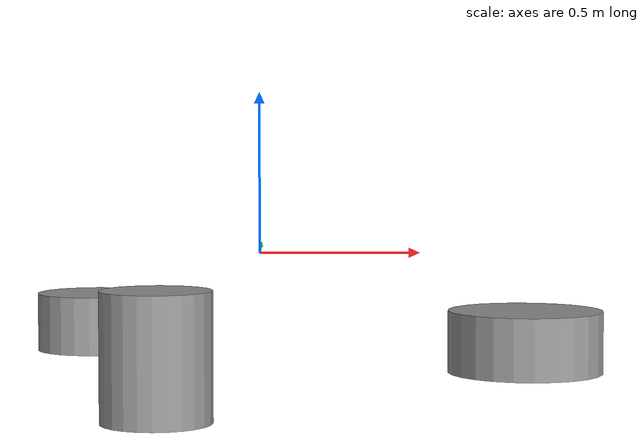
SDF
<?xml version='1.0'?>
<sdf version='1.6'>
  <model name='stupid_rocks'>
    <link name='link_2'>
      <inertial>
        <mass>1</mass>
        <inertia>
          <ixx>0.145833</ixx>
          <ixy>0</ixy>
          <ixz>0</ixz>
          <iyy>0.145833</iyy>
          <iyz>0</iyz>
          <izz>0.125</izz>
        </inertia>
        <pose frame=''>0 0 0 0 -0 0</pose>
      </inertial>
      <pose frame=''>-0.259143 -0.980913 -0.2 0 -0 0</pose>
      <gravity>1</gravity>
      <self_collide>0</self_collide>
      <kinematic>0</kinematic>
      <enable_wind>0</enable_wind>
      <visual name='visual'>
        <pose frame=''>0 0 0 0 -0 0</pose>
        <geometry>
          <cylinder>
            <radius>0.15</radius>
            <length>0.35</length>
          </cylinder>
        </geometry>
        <material>
          <lighting>1</lighting>
          <script>
            <uri>file://media/materials/scripts/gazebo.material</uri>
            <name>Gazebo/Grey</name>
          </script>
          <shader type='vertex'>
            <normal_map>__default__</normal_map>
          </shader>
          <ambient>0.3 0.3 0.3 1</ambient>
          <diffuse>0.7 0.7 0.7 1</diffuse>
          <specular>0.01 0.01 0.01 1</specular>
          <emissive>0 0 0 1</emissive>
        </material>
        <transparency>0</transparency>
        <cast_shadows>1</cast_shadows>
      </visual>
      <collision name='collision'>
        <laser_retro>0</laser_retro>
        <max_contacts>10</max_contacts>
        <pose frame=''>0 0 0 0 -0 0</pose>
        <geometry>
          <cylinder>
            <radius>0.15</radius>
            <length>0.35</length>
          </cylinder>
        </geometry>
        <surface>
          <friction>
            <ode>
              <mu>1</mu>
              <mu2>1</mu2>
              <fdir1>0 0 0</fdir1>
              <slip1>0</slip1>
              <slip2>0</slip2>
            </ode>
            <torsional>
              <coefficient>1</coefficient>
              <patch_radius>0</patch_radius>
              <surface_radius>0</surface_radius>
              <use_patch_radius>1</use_patch_radius>
              <ode>
                <slip>0</slip>
              </ode>
            </torsional>
          </friction>
          <bounce>
            <restitution_coefficient>0</restitution_coefficient>
            <threshold>1e+06</threshold>
          </bounce>
          <contact>
            <collide_without_contact>0</collide_without_contact>
            <collide_without_contact_bitmask>1</collide_without_contact_bitmask>
            <collide_bitmask>1</collide_bitmask>
            <ode>
              <soft_cfm>0</soft_cfm>
              <soft_erp>0.2</soft_erp>
              <kp>1e+13</kp>
              <kd>1</kd>
              <max_vel>0.01</max_vel>
              <min_depth>0</min_depth>
            </ode>
            <bullet>
              <split_impulse>1</split_impulse>
              <split_impulse_penetration_threshold>-0.01</split_impulse_penetration_threshold>
              <soft_cfm>0</soft_cfm>
              <soft_erp>0.2</soft_erp>
              <kp>1e+13</kp>
              <kd>1</kd>
            </bullet>
          </contact>
        </surface>
      </collision>
    </link>
    <link name='link_3'>
      <inertial>
        <mass>1</mass>
        <inertia>
          <ixx>0.145833</ixx>
          <ixy>0</ixy>
          <ixz>0</ixz>
          <iyy>0.145833</iyy>
          <iyz>0</iyz>
          <izz>0.125</izz>
        </inertia>
        <pose frame=''>0 0 0 0 -0 0</pose>
      </inertial>
      <pose frame=''>0.852767 0.177527 0.1 0 -0 0</pose>
      <gravity>1</gravity>
      <self_collide>0</self_collide>
      <kinematic>0</kinematic>
      <enable_wind>0</enable_wind>
      <visual name='visual'>
        <pose frame=''>0 0 -0.4 0 -0 0</pose>
        <geometry>
          <cylinder>
            <radius>0.25</radius>
            <length>0.2</length>
          </cylinder>
        </geometry>
        <material>
          <lighting>1</lighting>
          <script>
            <uri>file://media/materials/scripts/gazebo.material</uri>
            <name>Gazebo/Grey</name>
          </script>
          <shader type='vertex'>
            <normal_map>__default__</normal_map>
          </shader>
          <ambient>0.3 0.3 0.3 1</ambient>
          <diffuse>0.7 0.7 0.7 1</diffuse>
          <specular>0.01 0.01 0.01 1</specular>
          <emissive>0 0 0 1</emissive>
        </material>
        <transparency>0</transparency>
        <cast_shadows>1</cast_shadows>
      </visual>
      <collision name='collision'>
        <laser_retro>0</laser_retro>
        <max_contacts>10</max_contacts>
        <pose frame=''>0 0 -0.4 0 -0 0</pose>
        <geometry>
          <cylinder>
            <radius>0.25</radius>
            <length>0.2</length>
          </cylinder>
        </geometry>
        <surface>
          <friction>
            <ode>
              <mu>1</mu>
              <mu2>1</mu2>
              <fdir1>0 0 0</fdir1>
              <slip1>0</slip1>
              <slip2>0</slip2>
            </ode>
            <torsional>
              <coefficient>1</coefficient>
              <patch_radius>0</patch_radius>
              <surface_radius>0</surface_radius>
              <use_patch_radius>1</use_patch_radius>
              <ode>
                <slip>0</slip>
              </ode>
            </torsional>
          </friction>
          <bounce>
            <restitution_coefficient>0</restitution_coefficient>
            <threshold>1e+06</threshold>
          </bounce>
          <contact>
            <collide_without_contact>0</collide_without_contact>
            <collide_without_contact_bitmask>1</collide_without_contact_bitmask>
            <collide_bitmask>1</collide_bitmask>
            <ode>
              <soft_cfm>0</soft_cfm>
              <soft_erp>0.2</soft_erp>
              <kp>1e+13</kp>
              <kd>1</kd>
              <max_vel>0.01</max_vel>
              <min_depth>0</min_depth>
            </ode>
            <bullet>
              <split_impulse>1</split_impulse>
              <split_impulse_penetration_threshold>-0.01</split_impulse_penetration_threshold>
              <soft_cfm>0</soft_cfm>
              <soft_erp>0.2</soft_erp>
              <kp>1e+13</kp>
              <kd>1</kd>
            </bullet>
          </contact>
        </surface>
      </collision>
    </link>
    <link name='link_5'>
      <inertial>
        <mass>1</mass>
        <inertia>
          <ixx>0.145833</ixx>
          <ixy>0</ixy>
          <ixz>0</ixz>
          <iyy>0.145833</iyy>
          <iyz>0</iyz>
          <izz>0.125</izz>
        </inertia>
        <pose frame=''>0 0 -0.2 0 -0 0</pose>
      </inertial>
      <pose frame=''>-0.593625 0.803387 0.1 0 -0 0</pose>
      <gravity>1</gravity>
      <self_collide>0</self_collide>
      <kinematic>0</kinematic>
      <enable_wind>0</enable_wind>
      <visual name='visual'>
        <pose frame=''>0 0 -0.4 0 -0 0</pose>
        <geometry>
          <cylinder>
            <radius>0.2</radius>
            <length>0.2</length>
          </cylinder>
        </geometry>
        <material>
          <lighting>1</lighting>
          <script>
            <uri>file://media/materials/scripts/gazebo.material</uri>
            <name>Gazebo/Grey</name>
          </script>
          <shader type='vertex'>
            <normal_map>__default__</normal_map>
          </shader>
          <ambient>0.3 0.3 0.3 1</ambient>
          <diffuse>0.7 0.7 0.7 1</diffuse>
          <specular>0.01 0.01 0.01 1</specular>
          <emissive>0 0 0 1</emissive>
        </material>
        <transparency>0</transparency>
        <cast_shadows>1</cast_shadows>
      </visual>
      <collision name='collision'>
        <laser_retro>0</laser_retro>
        <max_contacts>10</max_contacts>
        <pose frame=''>0 0 -0.4 0 -0 0</pose>
        <geometry>
          <cylinder>
            <radius>0.2</radius>
            <length>0.2</length>
          </cylinder>
        </geometry>
        <surface>
          <friction>
            <ode>
              <mu>1</mu>
              <mu2>1</mu2>
              <fdir1>0 0 0</fdir1>
              <slip1>0</slip1>
              <slip2>0</slip2>
            </ode>
            <torsional>
              <coefficient>1</coefficient>
              <patch_radius>0</patch_radius>
              <surface_radius>0</surface_radius>
              <use_patch_radius>1</use_patch_radius>
              <ode>
                <slip>0</slip>
              </ode>
            </torsional>
          </friction>
          <bounce>
            <restitution_coefficient>0</restitution_coefficient>
            <threshold>1e+06</threshold>
          </bounce>
          <contact>
            <collide_without_contact>0</collide_without_contact>
            <collide_without_contact_bitmask>1</collide_without_contact_bitmask>
            <collide_bitmask>1</collide_bitmask>
            <ode>
              <soft_cfm>0</soft_cfm>
              <soft_erp>0.2</soft_erp>
              <kp>1e+13</kp>
              <kd>1</kd>
              <max_vel>0.01</max_vel>
              <min_depth>0</min_depth>
            </ode>
            <bullet>
              <split_impulse>1</split_impulse>
              <split_impulse_penetration_threshold>-0.01</split_impulse_penetration_threshold>
              <soft_cfm>0</soft_cfm>
              <soft_erp>0.2</soft_erp>
              <kp>1e+13</kp>
              <kd>1</kd>
            </bullet>
          </contact>
        </surface>
      </collision>
    </link>
    <static>0</static>
    <allow_auto_disable>1</allow_auto_disable>
  </model>
</sdf>
